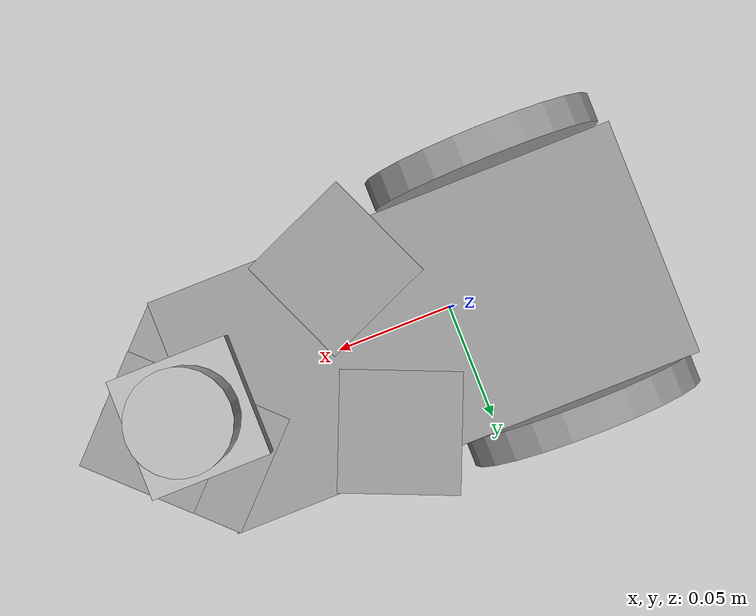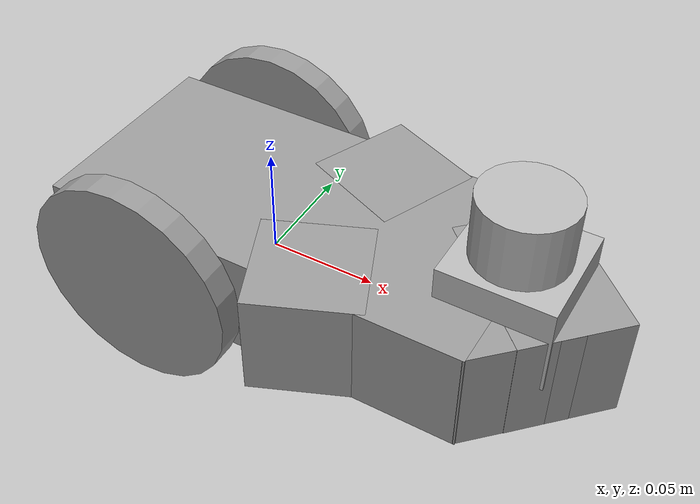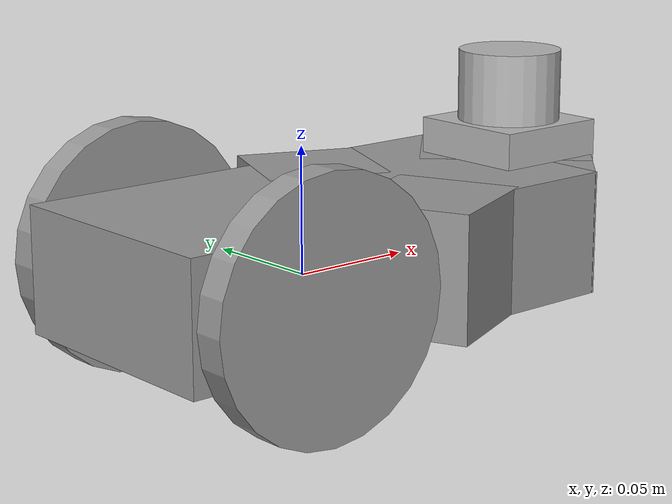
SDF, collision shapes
<?xml version='1.0'?>
<sdf version='1.7'>
  <model name='robotWithWings'>
    <link name='link_1'>
      <inertial>
        <mass>1</mass>
        <inertia>
          <ixx>0.166667</ixx>
          <ixy>0</ixy>
          <ixz>0</ixz>
          <iyy>0.166667</iyy>
          <iyz>0</iyz>
          <izz>0.166667</izz>
        </inertia>
        <pose>0 0 0 0 -0 0</pose>
      </inertial>
      <pose>0.01425 0.00375 0.00625 0 -0 0</pose>
      <gravity>1</gravity>
      <self_collide>0</self_collide>
      <kinematic>0</kinematic>
      <enable_wind>0</enable_wind>
      <visual name='visual'>
        <pose>0 0 0 0 -0 0</pose>
        <geometry>
          <box>
            <size>0.2 0.1 0.05</size>
          </box>
        </geometry>
        <material>
          <lighting>1</lighting>
          <script>
            <uri>file://media/materials/scripts/gazebo.material</uri>
            <name>Gazebo/Grey</name>
          </script>
          <shader type='pixel'>
            <normal_map>__default__</normal_map>
          </shader>
          <ambient>1 1 1 1</ambient>
          <diffuse>1 1 1 1</diffuse>
          <specular>1 1 1 1</specular>
          <emissive>0 0 0 1</emissive>
        </material>
        <transparency>0</transparency>
        <cast_shadows>1</cast_shadows>
      </visual>
      <collision name='collision'>
        <laser_retro>0</laser_retro>
        <max_contacts>10</max_contacts>
        <pose>0 0 0 0 -0 0</pose>
        <geometry>
          <box>
            <size>0.2 0.1 0.05</size>
          </box>
        </geometry>
        <surface>
          <friction>
            <ode>
              <mu>1</mu>
              <mu2>1</mu2>
              <fdir1>0 0 0</fdir1>
              <slip1>0</slip1>
              <slip2>0</slip2>
            </ode>
            <torsional>
              <coefficient>1</coefficient>
              <patch_radius>0</patch_radius>
              <surface_radius>0</surface_radius>
              <use_patch_radius>1</use_patch_radius>
              <ode>
                <slip>0</slip>
              </ode>
            </torsional>
          </friction>
          <bounce>
            <restitution_coefficient>0</restitution_coefficient>
            <threshold>1e+06</threshold>
          </bounce>
          <contact>
            <collide_without_contact>0</collide_without_contact>
            <collide_without_contact_bitmask>1</collide_without_contact_bitmask>
            <collide_bitmask>1</collide_bitmask>
            <ode>
              <soft_cfm>0</soft_cfm>
              <soft_erp>0.2</soft_erp>
              <kp>1e+13</kp>
              <kd>1</kd>
              <max_vel>0.01</max_vel>
              <min_depth>0</min_depth>
            </ode>
            <bullet>
              <split_impulse>1</split_impulse>
              <split_impulse_penetration_threshold>-0.01</split_impulse_penetration_threshold>
              <soft_cfm>0</soft_cfm>
              <soft_erp>0.2</soft_erp>
              <kp>1e+13</kp>
              <kd>1</kd>
            </bullet>
          </contact>
        </surface>
      </collision>
    </link>
    <link name='hokuyo::link'>
      <inertial>
        <mass>0.1</mass>
        <pose>0 0 0 0 -0 0</pose>
        <inertia>
          <ixx>1</ixx>
          <ixy>0</ixy>
          <ixz>0</ixz>
          <iyy>1</iyy>
          <iyz>0</iyz>
          <izz>1</izz>
        </inertia>
      </inertial>
      <sensor name='laser' type='ray'>
        <pose>0.01 0 0.0175 0 -0 0</pose>
        <ray>
          <scan>
            <horizontal>
              <samples>180</samples>
              <resolution>1</resolution>
              <min_angle>-1.5707</min_angle>
              <max_angle>1.5707</max_angle>
            </horizontal>
            <vertical>
              <samples>1</samples>
              <min_angle>0</min_angle>
              <max_angle>0</max_angle>
            </vertical>
          </scan>
          <range>
            <min>0.03</min>
            <max>1</max>
            <resolution>0.01</resolution>
          </range>
        </ray>
        <plugin name='laser' filename='libgazebo_ros_ray_sensor.so'>
          <output_type>sensor_msgs/LaserScan</output_type>
          <frameName>/hokuyo_link</frameName>
        </plugin>
        <always_on>1</always_on>
        <update_rate>30</update_rate>
        <visualize>1</visualize>
      </sensor>
      <pose>0.113673 0.00275 0.04 0 -0 0</pose>
      <self_collide>0</self_collide>
      <enable_wind>0</enable_wind>
      <kinematic>0</kinematic>
      <visual name='visual'>
        <geometry>
          <mesh>
            <uri>model://hokuyo/meshes/hokuyo.dae</uri>
          </mesh>
        </geometry>
        <material>
          <shader type='pixel'/>
          <emissive>0 0 0 1</emissive>
        </material>
        <pose>0 0 0 0 -0 0</pose>
        <transparency>0</transparency>
        <cast_shadows>1</cast_shadows>
      </visual>
      <collision name='collision-base'>
        <laser_retro>0</laser_retro>
        <max_contacts>10</max_contacts>
        <pose>0 0 -0.0145 0 -0 0</pose>
        <geometry>
          <box>
            <size>0.05 0.05 0.041</size>
          </box>
        </geometry>
        <surface>
          <friction>
            <ode>
              <mu>1</mu>
              <mu2>1</mu2>
              <fdir1>0 0 0</fdir1>
              <slip1>0</slip1>
              <slip2>0</slip2>
            </ode>
            <torsional>
              <coefficient>1</coefficient>
              <patch_radius>0</patch_radius>
              <surface_radius>0</surface_radius>
              <use_patch_radius>1</use_patch_radius>
              <ode>
                <slip>0</slip>
              </ode>
            </torsional>
          </friction>
          <bounce>
            <restitution_coefficient>0</restitution_coefficient>
            <threshold>1e+06</threshold>
          </bounce>
          <contact>
            <collide_without_contact>0</collide_without_contact>
            <collide_without_contact_bitmask>1</collide_without_contact_bitmask>
            <collide_bitmask>1</collide_bitmask>
            <ode>
              <soft_cfm>0</soft_cfm>
              <soft_erp>0.2</soft_erp>
              <kp>1e+13</kp>
              <kd>1</kd>
              <max_vel>0.01</max_vel>
              <min_depth>0</min_depth>
            </ode>
            <bullet>
              <split_impulse>1</split_impulse>
              <split_impulse_penetration_threshold>-0.01</split_impulse_penetration_threshold>
              <soft_cfm>0</soft_cfm>
              <soft_erp>0.2</soft_erp>
              <kp>1e+13</kp>
              <kd>1</kd>
            </bullet>
          </contact>
        </surface>
      </collision>
      <collision name='collision-top'>
        <laser_retro>0</laser_retro>
        <max_contacts>10</max_contacts>
        <pose>0 0 0.0205 0 -0 0</pose>
        <geometry>
          <cylinder>
            <radius>0.021</radius>
            <length>0.029</length>
          </cylinder>
        </geometry>
        <surface>
          <friction>
            <ode>
              <mu>1</mu>
              <mu2>1</mu2>
              <fdir1>0 0 0</fdir1>
              <slip1>0</slip1>
              <slip2>0</slip2>
            </ode>
            <torsional>
              <coefficient>1</coefficient>
              <patch_radius>0</patch_radius>
              <surface_radius>0</surface_radius>
              <use_patch_radius>1</use_patch_radius>
              <ode>
                <slip>0</slip>
              </ode>
            </torsional>
          </friction>
          <bounce>
            <restitution_coefficient>0</restitution_coefficient>
            <threshold>1e+06</threshold>
          </bounce>
          <contact>
            <collide_without_contact>0</collide_without_contact>
            <collide_without_contact_bitmask>1</collide_without_contact_bitmask>
            <collide_bitmask>1</collide_bitmask>
            <ode>
              <soft_cfm>0</soft_cfm>
              <soft_erp>0.2</soft_erp>
              <kp>1e+13</kp>
              <kd>1</kd>
              <max_vel>0.01</max_vel>
              <min_depth>0</min_depth>
            </ode>
            <bullet>
              <split_impulse>1</split_impulse>
              <split_impulse_penetration_threshold>-0.01</split_impulse_penetration_threshold>
              <soft_cfm>0</soft_cfm>
              <soft_erp>0.2</soft_erp>
              <kp>1e+13</kp>
              <kd>1</kd>
            </bullet>
          </contact>
        </surface>
      </collision>
    </link>
    <link name='link_1_clone'>
      <inertial>
        <mass>1</mass>
        <inertia>
          <ixx>0.166667</ixx>
          <ixy>0</ixy>
          <ixz>0</ixz>
          <iyy>0.166667</iyy>
          <iyz>0</iyz>
          <izz>0.166667</izz>
        </inertia>
        <pose>0 0 0 0 -0 0</pose>
      </inertial>
      <pose>0.11325 -0.010995 0.00625 3e-06 -5e-06 0.002848</pose>
      <gravity>1</gravity>
      <self_collide>0</self_collide>
      <kinematic>0</kinematic>
      <enable_wind>0</enable_wind>
      <visual name='visual'>
        <pose>0 0 0 0 -0 0.7854</pose>
        <geometry>
          <box>
            <size>0.05 0.05 0.05</size>
          </box>
        </geometry>
        <material>
          <lighting>1</lighting>
          <script>
            <uri>file://media/materials/scripts/gazebo.material</uri>
            <name>Gazebo/Grey</name>
          </script>
          <shader type='pixel'>
            <normal_map>__default__</normal_map>
          </shader>
          <ambient>1 1 1 1</ambient>
          <diffuse>1 1 1 1</diffuse>
          <specular>1 1 1 1</specular>
          <emissive>0 0 0 1</emissive>
        </material>
        <transparency>0</transparency>
        <cast_shadows>1</cast_shadows>
      </visual>
      <collision name='collision'>
        <laser_retro>0</laser_retro>
        <max_contacts>10</max_contacts>
        <pose>0 0 0 0 -0 0.7854</pose>
        <geometry>
          <box>
            <size>0.05 0.05 0.05</size>
          </box>
        </geometry>
        <surface>
          <friction>
            <ode>
              <mu>1</mu>
              <mu2>1</mu2>
              <fdir1>0 0 0</fdir1>
              <slip1>0</slip1>
              <slip2>0</slip2>
            </ode>
            <torsional>
              <coefficient>1</coefficient>
              <patch_radius>0</patch_radius>
              <surface_radius>0</surface_radius>
              <use_patch_radius>1</use_patch_radius>
              <ode>
                <slip>0</slip>
              </ode>
            </torsional>
          </friction>
          <bounce>
            <restitution_coefficient>0</restitution_coefficient>
            <threshold>1e+06</threshold>
          </bounce>
          <contact>
            <collide_without_contact>0</collide_without_contact>
            <collide_without_contact_bitmask>1</collide_without_contact_bitmask>
            <collide_bitmask>1</collide_bitmask>
            <ode>
              <soft_cfm>0</soft_cfm>
              <soft_erp>0.2</soft_erp>
              <kp>1e+13</kp>
              <kd>1</kd>
              <max_vel>0.01</max_vel>
              <min_depth>0</min_depth>
            </ode>
            <bullet>
              <split_impulse>1</split_impulse>
              <split_impulse_penetration_threshold>-0.01</split_impulse_penetration_threshold>
              <soft_cfm>0</soft_cfm>
              <soft_erp>0.2</soft_erp>
              <kp>1e+13</kp>
              <kd>1</kd>
            </bullet>
          </contact>
        </surface>
      </collision>
    </link>
    <link name='link_1_clone_clone'>
      <inertial>
        <mass>1</mass>
        <inertia>
          <ixx>0.166667</ixx>
          <ixy>0</ixy>
          <ixz>0</ixz>
          <iyy>0.166667</iyy>
          <iyz>0</iyz>
          <izz>0.166667</izz>
        </inertia>
        <pose>0 0 0 0 -0 0</pose>
      </inertial>
      <pose>0.11325 0.018578 0.006252 6e-06 -1e-05 0.005696</pose>
      <gravity>1</gravity>
      <self_collide>0</self_collide>
      <kinematic>0</kinematic>
      <enable_wind>0</enable_wind>
      <visual name='visual'>
        <pose>0 0 0 0 -0 0.7854</pose>
        <geometry>
          <box>
            <size>0.05 0.05 0.05</size>
          </box>
        </geometry>
        <material>
          <lighting>1</lighting>
          <script>
            <uri>file://media/materials/scripts/gazebo.material</uri>
            <name>Gazebo/Grey</name>
          </script>
          <shader type='pixel'>
            <normal_map>__default__</normal_map>
          </shader>
          <ambient>1 1 1 1</ambient>
          <diffuse>1 1 1 1</diffuse>
          <specular>1 1 1 1</specular>
          <emissive>0 0 0 1</emissive>
        </material>
        <transparency>0</transparency>
        <cast_shadows>1</cast_shadows>
      </visual>
      <collision name='collision'>
        <laser_retro>0</laser_retro>
        <max_contacts>10</max_contacts>
        <pose>0 0 0 0 -0 0.7854</pose>
        <geometry>
          <box>
            <size>0.05 0.05 0.05</size>
          </box>
        </geometry>
        <surface>
          <friction>
            <ode>
              <mu>1</mu>
              <mu2>1</mu2>
              <fdir1>0 0 0</fdir1>
              <slip1>0</slip1>
              <slip2>0</slip2>
            </ode>
            <torsional>
              <coefficient>1</coefficient>
              <patch_radius>0</patch_radius>
              <surface_radius>0</surface_radius>
              <use_patch_radius>1</use_patch_radius>
              <ode>
                <slip>0</slip>
              </ode>
            </torsional>
          </friction>
          <bounce>
            <restitution_coefficient>0</restitution_coefficient>
            <threshold>1e+06</threshold>
          </bounce>
          <contact>
            <collide_without_contact>0</collide_without_contact>
            <collide_without_contact_bitmask>1</collide_without_contact_bitmask>
            <collide_bitmask>1</collide_bitmask>
            <ode>
              <soft_cfm>0</soft_cfm>
              <soft_erp>0.2</soft_erp>
              <kp>1e+13</kp>
              <kd>1</kd>
              <max_vel>0.01</max_vel>
              <min_depth>0</min_depth>
            </ode>
            <bullet>
              <split_impulse>1</split_impulse>
              <split_impulse_penetration_threshold>-0.01</split_impulse_penetration_threshold>
              <soft_cfm>0</soft_cfm>
              <soft_erp>0.2</soft_erp>
              <kp>1e+13</kp>
              <kd>1</kd>
            </bullet>
          </contact>
        </surface>
      </collision>
    </link>
    <link name='link_1_clone_clone_clone'>
      <inertial>
        <mass>1</mass>
        <inertia>
          <ixx>0.166667</ixx>
          <ixy>0</ixy>
          <ixz>0</ixz>
          <iyy>0.166667</iyy>
          <iyz>0</iyz>
          <izz>0.166667</izz>
        </inertia>
        <pose>0 0 0 0 -0 0</pose>
      </inertial>
      <pose>0.038425 0.039623 0.006252 9e-06 -1.5e-05 0.008544</pose>
      <gravity>1</gravity>
      <self_collide>0</self_collide>
      <kinematic>0</kinematic>
      <enable_wind>0</enable_wind>
      <visual name='visual'>
        <pose>0 0 0 0 -0 1.1654</pose>
        <geometry>
          <box>
            <size>0.05 0.05 0.05</size>
          </box>
        </geometry>
        <material>
          <lighting>1</lighting>
          <script>
            <uri>file://media/materials/scripts/gazebo.material</uri>
            <name>Gazebo/Grey</name>
          </script>
          <shader type='pixel'>
            <normal_map>__default__</normal_map>
          </shader>
          <ambient>1 1 1 1</ambient>
          <diffuse>1 1 1 1</diffuse>
          <specular>1 1 1 1</specular>
          <emissive>0 0 0 1</emissive>
        </material>
        <transparency>0</transparency>
        <cast_shadows>1</cast_shadows>
      </visual>
      <collision name='collision'>
        <laser_retro>0</laser_retro>
        <max_contacts>10</max_contacts>
        <pose>0 0 0 0 -0 1.1654</pose>
        <geometry>
          <box>
            <size>0.05 0.05 0.05</size>
          </box>
        </geometry>
        <surface>
          <friction>
            <ode>
              <mu>1</mu>
              <mu2>1</mu2>
              <fdir1>0 0 0</fdir1>
              <slip1>0</slip1>
              <slip2>0</slip2>
            </ode>
            <torsional>
              <coefficient>1</coefficient>
              <patch_radius>0</patch_radius>
              <surface_radius>0</surface_radius>
              <use_patch_radius>1</use_patch_radius>
              <ode>
                <slip>0</slip>
              </ode>
            </torsional>
          </friction>
          <bounce>
            <restitution_coefficient>0</restitution_coefficient>
            <threshold>1e+06</threshold>
          </bounce>
          <contact>
            <collide_without_contact>0</collide_without_contact>
            <collide_without_contact_bitmask>1</collide_without_contact_bitmask>
            <collide_bitmask>1</collide_bitmask>
            <ode>
              <soft_cfm>0</soft_cfm>
              <soft_erp>0.2</soft_erp>
              <kp>1e+13</kp>
              <kd>1</kd>
              <max_vel>0.01</max_vel>
              <min_depth>0</min_depth>
            </ode>
            <bullet>
              <split_impulse>1</split_impulse>
              <split_impulse_penetration_threshold>-0.01</split_impulse_penetration_threshold>
              <soft_cfm>0</soft_cfm>
              <soft_erp>0.2</soft_erp>
              <kp>1e+13</kp>
              <kd>1</kd>
            </bullet>
          </contact>
        </surface>
      </collision>
    </link>
    <link name='link_1_clone_clone_clone_0'>
      <inertial>
        <mass>1</mass>
        <inertia>
          <ixx>0.166667</ixx>
          <ixy>0</ixy>
          <ixz>0</ixz>
          <iyy>0.166667</iyy>
          <iyz>0</iyz>
          <izz>0.166667</izz>
        </inertia>
        <pose>0 0 0 0 -0 0</pose>
      </inertial>
      <pose>0.038517 -0.031161 0.006252 9e-06 -1.5e-05 0.008544</pose>
      <gravity>1</gravity>
      <self_collide>0</self_collide>
      <kinematic>0</kinematic>
      <enable_wind>0</enable_wind>
      <visual name='visual'>
        <pose>0 0 0 0 -0 0.3954</pose>
        <geometry>
          <box>
            <size>0.05 0.05 0.05</size>
          </box>
        </geometry>
        <material>
          <lighting>1</lighting>
          <script>
            <uri>file://media/materials/scripts/gazebo.material</uri>
            <name>Gazebo/Grey</name>
          </script>
          <shader type='pixel'>
            <normal_map>__default__</normal_map>
          </shader>
          <ambient>1 1 1 1</ambient>
          <diffuse>1 1 1 1</diffuse>
          <specular>1 1 1 1</specular>
          <emissive>0 0 0 1</emissive>
        </material>
        <transparency>0</transparency>
        <cast_shadows>1</cast_shadows>
      </visual>
      <collision name='collision'>
        <laser_retro>0</laser_retro>
        <max_contacts>10</max_contacts>
        <pose>0 0 0 0 -0 0.3954</pose>
        <geometry>
          <box>
            <size>0.05 0.05 0.05</size>
          </box>
        </geometry>
        <surface>
          <friction>
            <ode>
              <mu>1</mu>
              <mu2>1</mu2>
              <fdir1>0 0 0</fdir1>
              <slip1>0</slip1>
              <slip2>0</slip2>
            </ode>
            <torsional>
              <coefficient>1</coefficient>
              <patch_radius>0</patch_radius>
              <surface_radius>0</surface_radius>
              <use_patch_radius>1</use_patch_radius>
              <ode>
                <slip>0</slip>
              </ode>
            </torsional>
          </friction>
          <bounce>
            <restitution_coefficient>0</restitution_coefficient>
            <threshold>1e+06</threshold>
          </bounce>
          <contact>
            <collide_without_contact>0</collide_without_contact>
            <collide_without_contact_bitmask>1</collide_without_contact_bitmask>
            <collide_bitmask>1</collide_bitmask>
            <ode>
              <soft_cfm>0</soft_cfm>
              <soft_erp>0.2</soft_erp>
              <kp>1e+13</kp>
              <kd>1</kd>
              <max_vel>0.01</max_vel>
              <min_depth>0</min_depth>
            </ode>
            <bullet>
              <split_impulse>1</split_impulse>
              <split_impulse_penetration_threshold>-0.01</split_impulse_penetration_threshold>
              <soft_cfm>0</soft_cfm>
              <soft_erp>0.2</soft_erp>
              <kp>1e+13</kp>
              <kd>1</kd>
            </bullet>
          </contact>
        </surface>
      </collision>
    </link>
    <link name='link_1_clone_clone_clone_clone_0'>
      <inertial>
        <mass>1</mass>
        <inertia>
          <ixx>0.166667</ixx>
          <ixy>0</ixy>
          <ixz>0</ixz>
          <iyy>0.166667</iyy>
          <iyz>0</iyz>
          <izz>0.166667</izz>
        </inertia>
        <pose>0 0 0 0 -0 0</pose>
      </inertial>
      <pose>0.12825 0.004176 0.006254 1.2e-05 -2e-05 0.011392</pose>
      <gravity>1</gravity>
      <self_collide>0</self_collide>
      <kinematic>0</kinematic>
      <enable_wind>0</enable_wind>
      <visual name='visual'>
        <pose>0 0 0 0 -0 0.7854</pose>
        <geometry>
          <box>
            <size>0.05 0.05 0.05</size>
          </box>
        </geometry>
        <material>
          <lighting>1</lighting>
          <script>
            <uri>file://media/materials/scripts/gazebo.material</uri>
            <name>Gazebo/Grey</name>
          </script>
          <shader type='pixel'>
            <normal_map>__default__</normal_map>
          </shader>
          <ambient>1 1 1 1</ambient>
          <diffuse>1 1 1 1</diffuse>
          <specular>1 1 1 1</specular>
          <emissive>0 0 0 1</emissive>
        </material>
        <transparency>0</transparency>
        <cast_shadows>1</cast_shadows>
      </visual>
      <collision name='collision'>
        <laser_retro>0</laser_retro>
        <max_contacts>10</max_contacts>
        <pose>0 0 0 0 -0 0.7854</pose>
        <geometry>
          <box>
            <size>0.05 0.05 0.05</size>
          </box>
        </geometry>
        <surface>
          <friction>
            <ode>
              <mu>1</mu>
              <mu2>1</mu2>
              <fdir1>0 0 0</fdir1>
              <slip1>0</slip1>
              <slip2>0</slip2>
            </ode>
            <torsional>
              <coefficient>1</coefficient>
              <patch_radius>0</patch_radius>
              <surface_radius>0</surface_radius>
              <use_patch_radius>1</use_patch_radius>
              <ode>
                <slip>0</slip>
              </ode>
            </torsional>
          </friction>
          <bounce>
            <restitution_coefficient>0</restitution_coefficient>
            <threshold>1e+06</threshold>
          </bounce>
          <contact>
            <collide_without_contact>0</collide_without_contact>
            <collide_without_contact_bitmask>1</collide_without_contact_bitmask>
            <collide_bitmask>1</collide_bitmask>
            <ode>
              <soft_cfm>0</soft_cfm>
              <soft_erp>0.2</soft_erp>
              <kp>1e+13</kp>
              <kd>1</kd>
              <max_vel>0.01</max_vel>
              <min_depth>0</min_depth>
            </ode>
            <bullet>
              <split_impulse>1</split_impulse>
              <split_impulse_penetration_threshold>-0.01</split_impulse_penetration_threshold>
              <soft_cfm>0</soft_cfm>
              <soft_erp>0.2</soft_erp>
              <kp>1e+13</kp>
              <kd>1</kd>
            </bullet>
          </contact>
        </surface>
      </collision>
    </link>
    <link name='link_3'>
      <inertial>
        <mass>1</mass>
        <inertia>
          <ixx>0.145833</ixx>
          <ixy>0</ixy>
          <ixz>0</ixz>
          <iyy>0.145833</iyy>
          <iyz>0</iyz>
          <izz>0.125</izz>
        </inertia>
        <pose>0 0 0 0 -0 0</pose>
      </inertial>
      <pose>-0.03575 -0.055 0.00625 1.5707 -0 0</pose>
      <gravity>1</gravity>
      <self_collide>0</self_collide>
      <kinematic>0</kinematic>
      <enable_wind>0</enable_wind>
      <visual name='visual'>
        <pose>0 0 0 0 -0 0</pose>
        <geometry>
          <cylinder>
            <radius>0.05</radius>
            <length>0.0125</length>
          </cylinder>
        </geometry>
        <material>
          <lighting>1</lighting>
          <script>
            <uri>file://media/materials/scripts/gazebo.material</uri>
            <name>Gazebo/Grey</name>
          </script>
          <shader type='pixel'>
            <normal_map>__default__</normal_map>
          </shader>
          <ambient>0 0 0 1</ambient>
          <diffuse>0 0 0 1</diffuse>
          <specular>0 0 0 1</specular>
          <emissive>0 0 0 1</emissive>
        </material>
        <transparency>0</transparency>
        <cast_shadows>1</cast_shadows>
      </visual>
      <collision name='collision'>
        <laser_retro>0</laser_retro>
        <max_contacts>10</max_contacts>
        <pose>0 0 0 0 -0 0</pose>
        <geometry>
          <cylinder>
            <radius>0.05</radius>
            <length>0.0125</length>
          </cylinder>
        </geometry>
        <surface>
          <friction>
            <ode>
              <mu>1</mu>
              <mu2>1</mu2>
              <fdir1>0 0 0</fdir1>
              <slip1>0</slip1>
              <slip2>0</slip2>
            </ode>
            <torsional>
              <coefficient>1</coefficient>
              <patch_radius>0</patch_radius>
              <surface_radius>0</surface_radius>
              <use_patch_radius>1</use_patch_radius>
              <ode>
                <slip>0</slip>
              </ode>
            </torsional>
          </friction>
          <bounce>
            <restitution_coefficient>0</restitution_coefficient>
            <threshold>1e+06</threshold>
          </bounce>
          <contact>
            <collide_without_contact>0</collide_without_contact>
            <collide_without_contact_bitmask>1</collide_without_contact_bitmask>
            <collide_bitmask>1</collide_bitmask>
            <ode>
              <soft_cfm>0</soft_cfm>
              <soft_erp>0.2</soft_erp>
              <kp>1e+13</kp>
              <kd>1</kd>
              <max_vel>0.01</max_vel>
              <min_depth>0</min_depth>
            </ode>
            <bullet>
              <split_impulse>1</split_impulse>
              <split_impulse_penetration_threshold>-0.01</split_impulse_penetration_threshold>
              <soft_cfm>0</soft_cfm>
              <soft_erp>0.2</soft_erp>
              <kp>1e+13</kp>
              <kd>1</kd>
            </bullet>
          </contact>
        </surface>
      </collision>
    </link>
    <link name='link_3_clone'>
      <inertial>
        <mass>1</mass>
        <inertia>
          <ixx>0.145833</ixx>
          <ixy>0</ixy>
          <ixz>0</ixz>
          <iyy>0.145833</iyy>
          <iyz>0</iyz>
          <izz>0.125</izz>
        </inertia>
        <pose>0 0 0 0 -0 0</pose>
      </inertial>
      <pose>-0.03575 0.06 0.00625 1.5707 -0 0</pose>
      <gravity>1</gravity>
      <self_collide>0</self_collide>
      <kinematic>0</kinematic>
      <enable_wind>0</enable_wind>
      <visual name='visual'>
        <pose>0 0 0 0 -0 0</pose>
        <geometry>
          <cylinder>
            <radius>0.05</radius>
            <length>0.0125</length>
          </cylinder>
        </geometry>
        <material>
          <lighting>1</lighting>
          <script>
            <uri>file://media/materials/scripts/gazebo.material</uri>
            <name>Gazebo/Grey</name>
          </script>
          <shader type='pixel'>
            <normal_map>__default__</normal_map>
          </shader>
          <ambient>0 0 0 1</ambient>
          <diffuse>0 0 0 1</diffuse>
          <specular>0 0 0 1</specular>
          <emissive>0 0 0 1</emissive>
        </material>
        <transparency>0</transparency>
        <cast_shadows>1</cast_shadows>
      </visual>
      <collision name='collision'>
        <laser_retro>0</laser_retro>
        <max_contacts>10</max_contacts>
        <pose>0 0 0 0 -0 0</pose>
        <geometry>
          <cylinder>
            <radius>0.05</radius>
            <length>0.0125</length>
          </cylinder>
        </geometry>
        <surface>
          <friction>
            <ode>
              <mu>1</mu>
              <mu2>1</mu2>
              <fdir1>0 0 0</fdir1>
              <slip1>0</slip1>
              <slip2>0</slip2>
            </ode>
            <torsional>
              <coefficient>1</coefficient>
              <patch_radius>0</patch_radius>
              <surface_radius>0</surface_radius>
              <use_patch_radius>1</use_patch_radius>
              <ode>
                <slip>0</slip>
              </ode>
            </torsional>
          </friction>
          <bounce>
            <restitution_coefficient>0</restitution_coefficient>
            <threshold>1e+06</threshold>
          </bounce>
          <contact>
            <collide_without_contact>0</collide_without_contact>
            <collide_without_contact_bitmask>1</collide_without_contact_bitmask>
            <collide_bitmask>1</collide_bitmask>
            <ode>
              <soft_cfm>0</soft_cfm>
              <soft_erp>0.2</soft_erp>
              <kp>1e+13</kp>
              <kd>1</kd>
              <max_vel>0.01</max_vel>
              <min_depth>0</min_depth>
            </ode>
            <bullet>
              <split_impulse>1</split_impulse>
              <split_impulse_penetration_threshold>-0.01</split_impulse_penetration_threshold>
              <soft_cfm>0</soft_cfm>
              <soft_erp>0.2</soft_erp>
              <kp>1e+13</kp>
              <kd>1</kd>
            </bullet>
          </contact>
        </surface>
      </collision>
    </link>
    <link name='link_4'>
      <inertial>
        <mass>1</mass>
        <inertia>
          <ixx>0.1</ixx>
          <ixy>0</ixy>
          <ixz>0</ixz>
          <iyy>0.1</iyy>
          <iyz>0</iyz>
          <izz>0.1</izz>
        </inertia>
        <pose>0 0 0 0 -0 0</pose>
      </inertial>
      <pose>0.08675 0.00375 -0.01875 0 -0 0</pose>
      <gravity>1</gravity>
      <self_collide>0</self_collide>
      <kinematic>0</kinematic>
      <enable_wind>0</enable_wind>
      <visual name='visual'>
        <pose>0 0 0 0 -0 0</pose>
        <geometry>
          <sphere>
            <radius>0.025</radius>
          </sphere>
        </geometry>
        <material>
          <lighting>1</lighting>
          <script>
            <uri>file://media/materials/scripts/gazebo.material</uri>
            <name>Gazebo/Grey</name>
          </script>
          <shader type='pixel'>
            <normal_map>__default__</normal_map>
          </shader>
          <ambient>0 0 0 1</ambient>
          <diffuse>0 0 0 1</diffuse>
          <specular>0 0 0 1</specular>
          <emissive>0 0 0 1</emissive>
        </material>
        <transparency>0</transparency>
        <cast_shadows>1</cast_shadows>
      </visual>
      <collision name='collision'>
        <laser_retro>0</laser_retro>
        <max_contacts>10</max_contacts>
        <pose>0 0 0 0 -0 0</pose>
        <geometry>
          <sphere>
            <radius>0.025</radius>
          </sphere>
        </geometry>
        <surface>
          <friction>
            <ode>
              <mu>1</mu>
              <mu2>1</mu2>
              <fdir1>0 0 0</fdir1>
              <slip1>0</slip1>
              <slip2>0</slip2>
            </ode>
            <torsional>
              <coefficient>1</coefficient>
              <patch_radius>0</patch_radius>
              <surface_radius>0</surface_radius>
              <use_patch_radius>1</use_patch_radius>
              <ode>
                <slip>0</slip>
              </ode>
            </torsional>
          </friction>
          <bounce>
            <restitution_coefficient>0</restitution_coefficient>
            <threshold>1e+06</threshold>
          </bounce>
          <contact>
            <collide_without_contact>0</collide_without_contact>
            <collide_without_contact_bitmask>1</collide_without_contact_bitmask>
            <collide_bitmask>1</collide_bitmask>
            <ode>
              <soft_cfm>0</soft_cfm>
              <soft_erp>0.2</soft_erp>
              <kp>1e+13</kp>
              <kd>1</kd>
              <max_vel>0.01</max_vel>
              <min_depth>0</min_depth>
            </ode>
            <bullet>
              <split_impulse>1</split_impulse>
              <split_impulse_penetration_threshold>-0.01</split_impulse_penetration_threshold>
              <soft_cfm>0</soft_cfm>
              <soft_erp>0.2</soft_erp>
              <kp>1e+13</kp>
              <kd>1</kd>
            </bullet>
          </contact>
        </surface>
      </collision>
    </link>
    <joint name='Ball_Joint' type='ball'>
      <parent>link_1</parent>
      <child>link_4</child>
      <pose>0 0 0 0 -0 0</pose>
      <physics>
        <ode>
          <limit>
            <cfm>0</cfm>
            <erp>0.2</erp>
          </limit>
          <suspension>
            <cfm>0</cfm>
            <erp>0.2</erp>
          </suspension>
        </ode>
      </physics>
    </joint>
    <joint name='Left_Wheel_Joint' type='revolute'>
      <parent>link_1</parent>
      <child>link_3_clone</child>
      <pose>0 0 0 0 -0 0</pose>
      <axis>
        <xyz>0 0 1</xyz>
        <limit>
          <lower>-1.79769e+308</lower>
          <upper>1.79769e+308</upper>
          <effort>-1</effort>
          <velocity>-1</velocity>
        </limit>
        <dynamics>
          <spring_reference>0</spring_reference>
          <spring_stiffness>0</spring_stiffness>
          <damping>0</damping>
          <friction>1</friction>
        </dynamics>
      </axis>
      <physics>
        <ode>
          <limit>
            <cfm>0</cfm>
            <erp>0.2</erp>
          </limit>
          <suspension>
            <cfm>0</cfm>
            <erp>0.2</erp>
          </suspension>
        </ode>
      </physics>
    </joint>
    <joint name='Right_Wheel_Joint' type='revolute'>
      <parent>link_1</parent>
      <child>link_3</child>
      <pose>0 0 0 0 -0 0</pose>
      <axis>
        <xyz>0 0 1</xyz>
        <limit>
          <lower>-1.79769e+308</lower>
          <upper>1.79769e+308</upper>
          <effort>-1</effort>
          <velocity>-1</velocity>
        </limit>
        <dynamics>
          <spring_reference>0</spring_reference>
          <spring_stiffness>0</spring_stiffness>
          <damping>0</damping>
          <friction>1</friction>
        </dynamics>
      </axis>
      <physics>
        <ode>
          <limit>
            <cfm>0</cfm>
            <erp>0.2</erp>
          </limit>
          <suspension>
            <cfm>0</cfm>
            <erp>0.2</erp>
          </suspension>
        </ode>
      </physics>
    </joint>
    <joint name='hokuyo_joint' type='fixed'>
      <parent>link_1</parent>
      <child>hokuyo::link</child>
      <pose>0 0 0 0 -0 0</pose>
      <physics>
        <ode>
          <limit>
            <cfm>0</cfm>
            <erp>0.2</erp>
          </limit>
          <suspension>
            <cfm>0</cfm>
            <erp>0.2</erp>
          </suspension>
        </ode>
      </physics>
    </joint>
    <joint name='link_1_JOINT_0' type='fixed'>
      <parent>link_1</parent>
      <child>link_1_clone</child>
      <pose>0 0 0 0 -0 0</pose>
      <physics>
        <ode>
          <limit>
            <cfm>0</cfm>
            <erp>0.2</erp>
          </limit>
          <suspension>
            <cfm>0</cfm>
            <erp>0.2</erp>
          </suspension>
        </ode>
      </physics>
    </joint>
    <joint name='link_1_JOINT_10' type='fixed'>
      <parent>link_1</parent>
      <child>link_1_clone_clone_clone_0</child>
      <pose>0 0 0 0 -0 0</pose>
      <physics>
        <ode>
          <limit>
            <cfm>0</cfm>
            <erp>0.2</erp>
          </limit>
          <suspension>
            <cfm>0</cfm>
            <erp>0.2</erp>
          </suspension>
        </ode>
      </physics>
    </joint>
    <joint name='link_1_JOINT_5' type='fixed'>
      <parent>link_1</parent>
      <child>link_1_clone_clone</child>
      <pose>0 0 0 0 -0 0</pose>
      <physics>
        <ode>
          <limit>
            <cfm>0</cfm>
            <erp>0.2</erp>
          </limit>
          <suspension>
            <cfm>0</cfm>
            <erp>0.2</erp>
          </suspension>
        </ode>
      </physics>
    </joint>
    <joint name='link_1_JOINT_6' type='fixed'>
      <parent>link_1</parent>
      <child>link_1_clone_clone_clone_clone_0</child>
      <pose>0 0 0 0 -0 0</pose>
      <physics>
        <ode>
          <limit>
            <cfm>0</cfm>
            <erp>0.2</erp>
          </limit>
          <suspension>
            <cfm>0</cfm>
            <erp>0.2</erp>
          </suspension>
        </ode>
      </physics>
    </joint>
    <joint name='link_1_JOINT_9' type='fixed'>
      <parent>link_1</parent>
      <child>link_1_clone_clone_clone</child>
      <pose>0 0 0 0 -0 0</pose>
      <physics>
        <ode>
          <limit>
            <cfm>0</cfm>
            <erp>0.2</erp>
          </limit>
          <suspension>
            <cfm>0</cfm>
            <erp>0.2</erp>
          </suspension>
        </ode>
      </physics>
    </joint>
    <static>0</static>
    <allow_auto_disable>1</allow_auto_disable>
    <plugin name='gazebo_ros_diff_drive' filename='libgazebo_ros_diff_drive.so'>
      <update_rate>50</update_rate>
      <left_joint>Left_Wheel_Joint</left_joint>
      <right_joint>Right_Wheel_Joint</right_joint>
      <wheel_separation>1.25</wheel_separation>
      <wheel_diameter>0.6</wheel_diameter>
      <max_wheel_torque>20</max_wheel_torque>
      <max_wheel_acceleration>1.0</max_wheel_acceleration>
      <command_topic>cmd_vel</command_topic>
      <publish_odom>1</publish_odom>
      <publish_odom_tf>1</publish_odom_tf>
      <publish_wheel_tf>1</publish_wheel_tf>
      <odometry_topic>odom</odometry_topic>
      <odometry_frame>odom</odometry_frame>
      <robot_base_frame>link_1</robot_base_frame>
    </plugin>
  </model>
</sdf>
